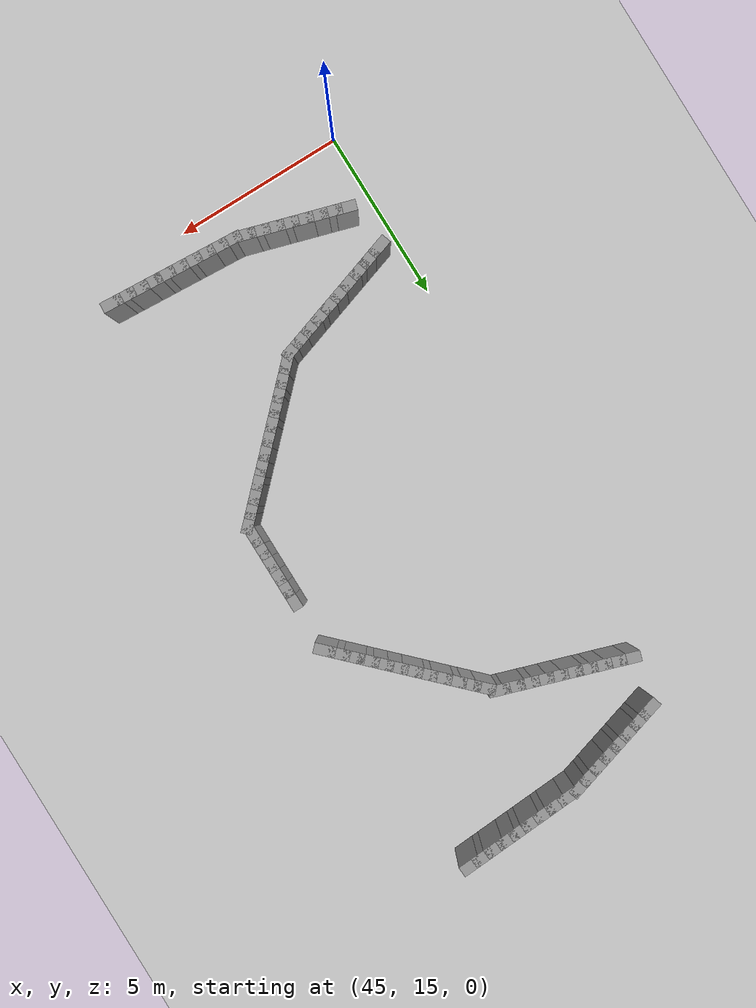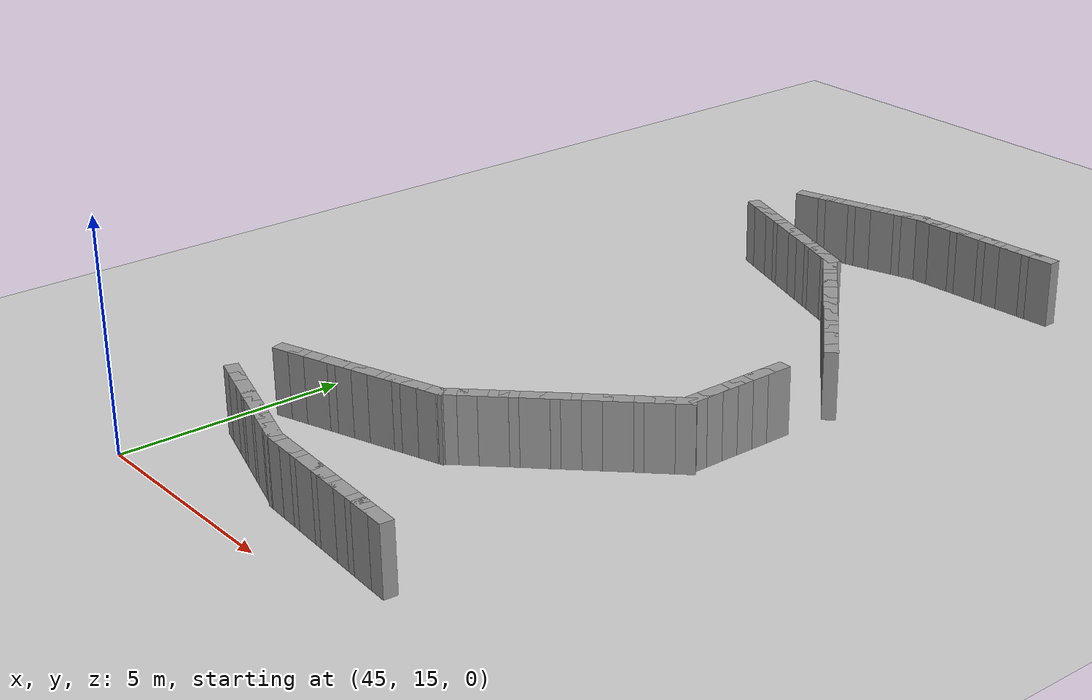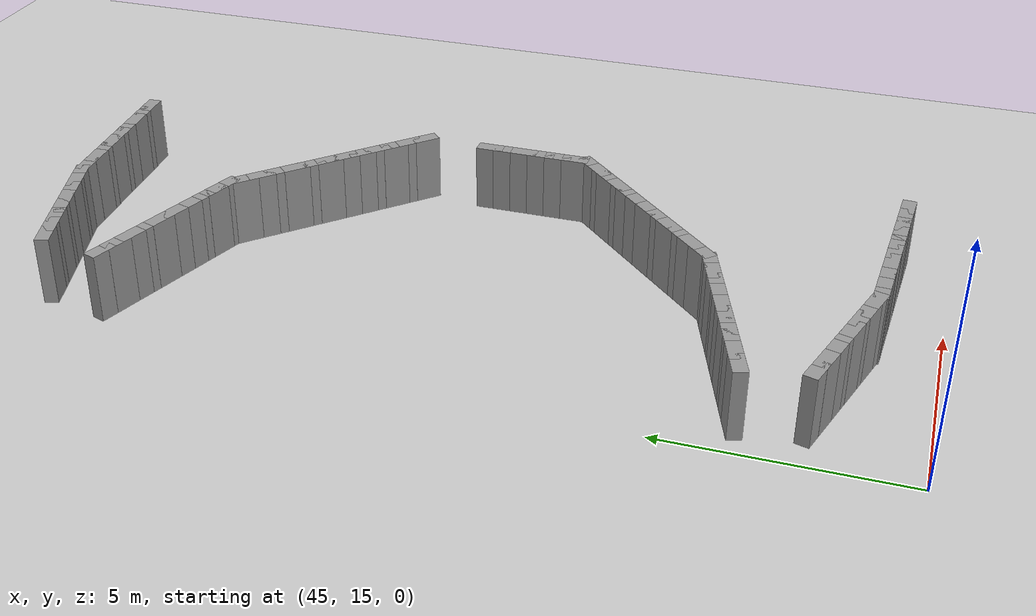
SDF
<sdf version="1.5">
 <world name="test_variable_width">
  <include><uri>model://sun</uri></include>
  <include><uri>model://ground_plane</uri></include>
  <model name="curbL_60">
   <static>true</static>
   <pose>45.689 18.542 0.750 0 0 0.316</pose>
   <link name="link">
    <collision name="col"><geometry><box><size>0.600 0.300 1.500</size></box></geometry></collision>
    <visual name="vis">
     <geometry><box><size>0.600 0.300 1.500</size></box></geometry>
     <material><ambient>0.6 0.6 0.6 1</ambient><diffuse>0.6 0.6 0.6 1</diffuse></material>
    </visual>
   </link>
  </model>
  <model name="curbL_61">
   <static>true</static>
   <pose>46.070 18.666 0.750 0 0 0.316</pose>
   <link name="link">
    <collision name="col"><geometry><box><size>0.600 0.300 1.500</size></box></geometry></collision>
    <visual name="vis">
     <geometry><box><size>0.600 0.300 1.500</size></box></geometry>
     <material><ambient>0.6 0.6 0.6 1</ambient><diffuse>0.6 0.6 0.6 1</diffuse></material>
    </visual>
   </link>
  </model>
  <model name="curbL_62">
   <static>true</static>
   <pose>46.450 18.790 0.750 0 0 0.316</pose>
   <link name="link">
    <collision name="col"><geometry><box><size>0.600 0.300 1.500</size></box></geometry></collision>
    <visual name="vis">
     <geometry><box><size>0.600 0.300 1.500</size></box></geometry>
     <material><ambient>0.6 0.6 0.6 1</ambient><diffuse>0.6 0.6 0.6 1</diffuse></material>
    </visual>
   </link>
  </model>
  <model name="curbL_63">
   <static>true</static>
   <pose>46.830 18.915 0.750 0 0 0.316</pose>
   <link name="link">
    <collision name="col"><geometry><box><size>0.600 0.300 1.500</size></box></geometry></collision>
    <visual name="vis">
     <geometry><box><size>0.600 0.300 1.500</size></box></geometry>
     <material><ambient>0.6 0.6 0.6 1</ambient><diffuse>0.6 0.6 0.6 1</diffuse></material>
    </visual>
   </link>
  </model>
  <model name="curbL_64">
   <static>true</static>
   <pose>47.210 19.039 0.750 0 0 0.316</pose>
   <link name="link">
    <collision name="col"><geometry><box><size>0.600 0.300 1.500</size></box></geometry></collision>
    <visual name="vis">
     <geometry><box><size>0.600 0.300 1.500</size></box></geometry>
     <material><ambient>0.6 0.6 0.6 1</ambient><diffuse>0.6 0.6 0.6 1</diffuse></material>
    </visual>
   </link>
  </model>
  <model name="curbL_65">
   <static>true</static>
   <pose>47.590 19.163 0.750 0 0 0.316</pose>
   <link name="link">
    <collision name="col"><geometry><box><size>0.600 0.300 1.500</size></box></geometry></collision>
    <visual name="vis">
     <geometry><box><size>0.600 0.300 1.500</size></box></geometry>
     <material><ambient>0.6 0.6 0.6 1</ambient><diffuse>0.6 0.6 0.6 1</diffuse></material>
    </visual>
   </link>
  </model>
  <model name="curbL_66">
   <static>true</static>
   <pose>47.971 19.287 0.750 0 0 0.316</pose>
   <link name="link">
    <collision name="col"><geometry><box><size>0.600 0.300 1.500</size></box></geometry></collision>
    <visual name="vis">
     <geometry><box><size>0.600 0.300 1.500</size></box></geometry>
     <material><ambient>0.6 0.6 0.6 1</ambient><diffuse>0.6 0.6 0.6 1</diffuse></material>
    </visual>
   </link>
  </model>
  <model name="curbL_67">
   <static>true</static>
   <pose>48.351 19.412 0.750 0 0 0.316</pose>
   <link name="link">
    <collision name="col"><geometry><box><size>0.600 0.300 1.500</size></box></geometry></collision>
    <visual name="vis">
     <geometry><box><size>0.600 0.300 1.500</size></box></geometry>
     <material><ambient>0.6 0.6 0.6 1</ambient><diffuse>0.6 0.6 0.6 1</diffuse></material>
    </visual>
   </link>
  </model>
  <model name="curbL_68">
   <static>true</static>
   <pose>48.731 19.536 0.750 0 0 0.316</pose>
   <link name="link">
    <collision name="col"><geometry><box><size>0.600 0.300 1.500</size></box></geometry></collision>
    <visual name="vis">
     <geometry><box><size>0.600 0.300 1.500</size></box></geometry>
     <material><ambient>0.6 0.6 0.6 1</ambient><diffuse>0.6 0.6 0.6 1</diffuse></material>
    </visual>
   </link>
  </model>
  <model name="curbL_69">
   <static>true</static>
   <pose>49.111 19.660 0.750 0 0 0.316</pose>
   <link name="link">
    <collision name="col"><geometry><box><size>0.600 0.300 1.500</size></box></geometry></collision>
    <visual name="vis">
     <geometry><box><size>0.600 0.300 1.500</size></box></geometry>
     <material><ambient>0.6 0.6 0.6 1</ambient><diffuse>0.6 0.6 0.6 1</diffuse></material>
    </visual>
   </link>
  </model>
  <model name="curbL_70">
   <static>true</static>
   <pose>49.433 19.879 0.750 0 0 0.784</pose>
   <link name="link">
    <collision name="col"><geometry><box><size>0.600 0.300 1.500</size></box></geometry></collision>
    <visual name="vis">
     <geometry><box><size>0.600 0.300 1.500</size></box></geometry>
     <material><ambient>0.6 0.6 0.6 1</ambient><diffuse>0.6 0.6 0.6 1</diffuse></material>
    </visual>
   </link>
  </model>
  <model name="curbL_71">
   <static>true</static>
   <pose>49.717 20.162 0.750 0 0 0.784</pose>
   <link name="link">
    <collision name="col"><geometry><box><size>0.600 0.300 1.500</size></box></geometry></collision>
    <visual name="vis">
     <geometry><box><size>0.600 0.300 1.500</size></box></geometry>
     <material><ambient>0.6 0.6 0.6 1</ambient><diffuse>0.6 0.6 0.6 1</diffuse></material>
    </visual>
   </link>
  </model>
  <model name="curbL_72">
   <static>true</static>
   <pose>50.000 20.444 0.750 0 0 0.784</pose>
   <link name="link">
    <collision name="col"><geometry><box><size>0.600 0.300 1.500</size></box></geometry></collision>
    <visual name="vis">
     <geometry><box><size>0.600 0.300 1.500</size></box></geometry>
     <material><ambient>0.6 0.6 0.6 1</ambient><diffuse>0.6 0.6 0.6 1</diffuse></material>
    </visual>
   </link>
  </model>
  <model name="curbL_73">
   <static>true</static>
   <pose>50.283 20.727 0.750 0 0 0.784</pose>
   <link name="link">
    <collision name="col"><geometry><box><size>0.600 0.300 1.500</size></box></geometry></collision>
    <visual name="vis">
     <geometry><box><size>0.600 0.300 1.500</size></box></geometry>
     <material><ambient>0.6 0.6 0.6 1</ambient><diffuse>0.6 0.6 0.6 1</diffuse></material>
    </visual>
   </link>
  </model>
  <model name="curbL_74">
   <static>true</static>
   <pose>50.566 21.009 0.750 0 0 0.784</pose>
   <link name="link">
    <collision name="col"><geometry><box><size>0.600 0.300 1.500</size></box></geometry></collision>
    <visual name="vis">
     <geometry><box><size>0.600 0.300 1.500</size></box></geometry>
     <material><ambient>0.6 0.6 0.6 1</ambient><diffuse>0.6 0.6 0.6 1</diffuse></material>
    </visual>
   </link>
  </model>
  <model name="curbL_75">
   <static>true</static>
   <pose>50.849 21.292 0.750 0 0 0.784</pose>
   <link name="link">
    <collision name="col"><geometry><box><size>0.600 0.300 1.500</size></box></geometry></collision>
    <visual name="vis">
     <geometry><box><size>0.600 0.300 1.500</size></box></geometry>
     <material><ambient>0.6 0.6 0.6 1</ambient><diffuse>0.6 0.6 0.6 1</diffuse></material>
    </visual>
   </link>
  </model>
  <model name="curbL_76">
   <static>true</static>
   <pose>51.132 21.574 0.750 0 0 0.784</pose>
   <link name="link">
    <collision name="col"><geometry><box><size>0.600 0.300 1.500</size></box></geometry></collision>
    <visual name="vis">
     <geometry><box><size>0.600 0.300 1.500</size></box></geometry>
     <material><ambient>0.6 0.6 0.6 1</ambient><diffuse>0.6 0.6 0.6 1</diffuse></material>
    </visual>
   </link>
  </model>
  <model name="curbL_77">
   <static>true</static>
   <pose>51.416 21.857 0.750 0 0 0.784</pose>
   <link name="link">
    <collision name="col"><geometry><box><size>0.600 0.300 1.500</size></box></geometry></collision>
    <visual name="vis">
     <geometry><box><size>0.600 0.300 1.500</size></box></geometry>
     <material><ambient>0.6 0.6 0.6 1</ambient><diffuse>0.6 0.6 0.6 1</diffuse></material>
    </visual>
   </link>
  </model>
  <model name="curbL_78">
   <static>true</static>
   <pose>51.699 22.139 0.750 0 0 0.784</pose>
   <link name="link">
    <collision name="col"><geometry><box><size>0.600 0.300 1.500</size></box></geometry></collision>
    <visual name="vis">
     <geometry><box><size>0.600 0.300 1.500</size></box></geometry>
     <material><ambient>0.6 0.6 0.6 1</ambient><diffuse>0.6 0.6 0.6 1</diffuse></material>
    </visual>
   </link>
  </model>
  <model name="curbL_79">
   <static>true</static>
   <pose>51.982 22.422 0.750 0 0 0.784</pose>
   <link name="link">
    <collision name="col"><geometry><box><size>0.600 0.300 1.500</size></box></geometry></collision>
    <visual name="vis">
     <geometry><box><size>0.600 0.300 1.500</size></box></geometry>
     <material><ambient>0.6 0.6 0.6 1</ambient><diffuse>0.6 0.6 0.6 1</diffuse></material>
    </visual>
   </link>
  </model>
  <model name="curbL_80">
   <static>true</static>
   <pose>52.265 22.704 0.750 0 0 0.784</pose>
   <link name="link">
    <collision name="col"><geometry><box><size>0.600 0.300 1.500</size></box></geometry></collision>
    <visual name="vis">
     <geometry><box><size>0.600 0.300 1.500</size></box></geometry>
     <material><ambient>0.6 0.6 0.6 1</ambient><diffuse>0.6 0.6 0.6 1</diffuse></material>
    </visual>
   </link>
  </model>
  <model name="curbL_81">
   <static>true</static>
   <pose>52.548 22.987 0.750 0 0 0.784</pose>
   <link name="link">
    <collision name="col"><geometry><box><size>0.600 0.300 1.500</size></box></geometry></collision>
    <visual name="vis">
     <geometry><box><size>0.600 0.300 1.500</size></box></geometry>
     <material><ambient>0.6 0.6 0.6 1</ambient><diffuse>0.6 0.6 0.6 1</diffuse></material>
    </visual>
   </link>
  </model>
  <model name="curbL_82">
   <static>true</static>
   <pose>52.624 23.355 0.750 0 0 1.571</pose>
   <link name="link">
    <collision name="col"><geometry><box><size>0.600 0.300 1.500</size></box></geometry></collision>
    <visual name="vis">
     <geometry><box><size>0.600 0.300 1.500</size></box></geometry>
     <material><ambient>0.6 0.6 0.6 1</ambient><diffuse>0.6 0.6 0.6 1</diffuse></material>
    </visual>
   </link>
  </model>
  <model name="curbL_83">
   <static>true</static>
   <pose>52.624 23.755 0.750 0 0 1.571</pose>
   <link name="link">
    <collision name="col"><geometry><box><size>0.600 0.300 1.500</size></box></geometry></collision>
    <visual name="vis">
     <geometry><box><size>0.600 0.300 1.500</size></box></geometry>
     <material><ambient>0.6 0.6 0.6 1</ambient><diffuse>0.6 0.6 0.6 1</diffuse></material>
    </visual>
   </link>
  </model>
  <model name="curbL_84">
   <static>true</static>
   <pose>52.624 24.155 0.750 0 0 1.571</pose>
   <link name="link">
    <collision name="col"><geometry><box><size>0.600 0.300 1.500</size></box></geometry></collision>
    <visual name="vis">
     <geometry><box><size>0.600 0.300 1.500</size></box></geometry>
     <material><ambient>0.6 0.6 0.6 1</ambient><diffuse>0.6 0.6 0.6 1</diffuse></material>
    </visual>
   </link>
  </model>
  <model name="curbL_85">
   <static>true</static>
   <pose>52.624 24.555 0.750 0 0 1.571</pose>
   <link name="link">
    <collision name="col"><geometry><box><size>0.600 0.300 1.500</size></box></geometry></collision>
    <visual name="vis">
     <geometry><box><size>0.600 0.300 1.500</size></box></geometry>
     <material><ambient>0.6 0.6 0.6 1</ambient><diffuse>0.6 0.6 0.6 1</diffuse></material>
    </visual>
   </link>
  </model>
  <model name="curbL_86">
   <static>true</static>
   <pose>52.624 24.955 0.750 0 0 1.571</pose>
   <link name="link">
    <collision name="col"><geometry><box><size>0.600 0.300 1.500</size></box></geometry></collision>
    <visual name="vis">
     <geometry><box><size>0.600 0.300 1.500</size></box></geometry>
     <material><ambient>0.6 0.6 0.6 1</ambient><diffuse>0.6 0.6 0.6 1</diffuse></material>
    </visual>
   </link>
  </model>
  <model name="curbL_87">
   <static>true</static>
   <pose>52.624 25.355 0.750 0 0 1.571</pose>
   <link name="link">
    <collision name="col"><geometry><box><size>0.600 0.300 1.500</size></box></geometry></collision>
    <visual name="vis">
     <geometry><box><size>0.600 0.300 1.500</size></box></geometry>
     <material><ambient>0.6 0.6 0.6 1</ambient><diffuse>0.6 0.6 0.6 1</diffuse></material>
    </visual>
   </link>
  </model>
  <model name="curbL_91">
   <static>true</static>
   <pose>52.611 26.950 0.750 0 0 2.357</pose>
   <link name="link">
    <collision name="col"><geometry><box><size>0.600 0.300 1.500</size></box></geometry></collision>
    <visual name="vis">
     <geometry><box><size>0.600 0.300 1.500</size></box></geometry>
     <material><ambient>0.6 0.6 0.6 1</ambient><diffuse>0.6 0.6 0.6 1</diffuse></material>
    </visual>
   </link>
  </model>
  <model name="curbL_92">
   <static>true</static>
   <pose>52.328 27.233 0.750 0 0 2.357</pose>
   <link name="link">
    <collision name="col"><geometry><box><size>0.600 0.300 1.500</size></box></geometry></collision>
    <visual name="vis">
     <geometry><box><size>0.600 0.300 1.500</size></box></geometry>
     <material><ambient>0.6 0.6 0.6 1</ambient><diffuse>0.6 0.6 0.6 1</diffuse></material>
    </visual>
   </link>
  </model>
  <model name="curbL_93">
   <static>true</static>
   <pose>52.045 27.515 0.750 0 0 2.357</pose>
   <link name="link">
    <collision name="col"><geometry><box><size>0.600 0.300 1.500</size></box></geometry></collision>
    <visual name="vis">
     <geometry><box><size>0.600 0.300 1.500</size></box></geometry>
     <material><ambient>0.6 0.6 0.6 1</ambient><diffuse>0.6 0.6 0.6 1</diffuse></material>
    </visual>
   </link>
  </model>
  <model name="curbL_94">
   <static>true</static>
   <pose>51.762 27.798 0.750 0 0 2.357</pose>
   <link name="link">
    <collision name="col"><geometry><box><size>0.600 0.300 1.500</size></box></geometry></collision>
    <visual name="vis">
     <geometry><box><size>0.600 0.300 1.500</size></box></geometry>
     <material><ambient>0.6 0.6 0.6 1</ambient><diffuse>0.6 0.6 0.6 1</diffuse></material>
    </visual>
   </link>
  </model>
  <model name="curbL_95">
   <static>true</static>
   <pose>51.479 28.080 0.750 0 0 2.357</pose>
   <link name="link">
    <collision name="col"><geometry><box><size>0.600 0.300 1.500</size></box></geometry></collision>
    <visual name="vis">
     <geometry><box><size>0.600 0.300 1.500</size></box></geometry>
     <material><ambient>0.6 0.6 0.6 1</ambient><diffuse>0.6 0.6 0.6 1</diffuse></material>
    </visual>
   </link>
  </model>
  <model name="curbL_96">
   <static>true</static>
   <pose>51.195 28.363 0.750 0 0 2.357</pose>
   <link name="link">
    <collision name="col"><geometry><box><size>0.600 0.300 1.500</size></box></geometry></collision>
    <visual name="vis">
     <geometry><box><size>0.600 0.300 1.500</size></box></geometry>
     <material><ambient>0.6 0.6 0.6 1</ambient><diffuse>0.6 0.6 0.6 1</diffuse></material>
    </visual>
   </link>
  </model>
  <model name="curbL_97">
   <static>true</static>
   <pose>50.912 28.645 0.750 0 0 2.357</pose>
   <link name="link">
    <collision name="col"><geometry><box><size>0.600 0.300 1.500</size></box></geometry></collision>
    <visual name="vis">
     <geometry><box><size>0.600 0.300 1.500</size></box></geometry>
     <material><ambient>0.6 0.6 0.6 1</ambient><diffuse>0.6 0.6 0.6 1</diffuse></material>
    </visual>
   </link>
  </model>
  <model name="curbL_98">
   <static>true</static>
   <pose>50.629 28.928 0.750 0 0 2.357</pose>
   <link name="link">
    <collision name="col"><geometry><box><size>0.600 0.300 1.500</size></box></geometry></collision>
    <visual name="vis">
     <geometry><box><size>0.600 0.300 1.500</size></box></geometry>
     <material><ambient>0.6 0.6 0.6 1</ambient><diffuse>0.6 0.6 0.6 1</diffuse></material>
    </visual>
   </link>
  </model>
  <model name="curbL_99">
   <static>true</static>
   <pose>50.346 29.210 0.750 0 0 2.357</pose>
   <link name="link">
    <collision name="col"><geometry><box><size>0.600 0.300 1.500</size></box></geometry></collision>
    <visual name="vis">
     <geometry><box><size>0.600 0.300 1.500</size></box></geometry>
     <material><ambient>0.6 0.6 0.6 1</ambient><diffuse>0.6 0.6 0.6 1</diffuse></material>
    </visual>
   </link>
  </model>
  <model name="curbL_100">
   <static>true</static>
   <pose>50.063 29.493 0.750 0 0 2.357</pose>
   <link name="link">
    <collision name="col"><geometry><box><size>0.600 0.300 1.500</size></box></geometry></collision>
    <visual name="vis">
     <geometry><box><size>0.600 0.300 1.500</size></box></geometry>
     <material><ambient>0.6 0.6 0.6 1</ambient><diffuse>0.6 0.6 0.6 1</diffuse></material>
    </visual>
   </link>
  </model>
  <model name="curbL_101">
   <static>true</static>
   <pose>49.780 29.775 0.750 0 0 2.357</pose>
   <link name="link">
    <collision name="col"><geometry><box><size>0.600 0.300 1.500</size></box></geometry></collision>
    <visual name="vis">
     <geometry><box><size>0.600 0.300 1.500</size></box></geometry>
     <material><ambient>0.6 0.6 0.6 1</ambient><diffuse>0.6 0.6 0.6 1</diffuse></material>
    </visual>
   </link>
  </model>
  <model name="curbL_102">
   <static>true</static>
   <pose>49.496 30.058 0.750 0 0 2.357</pose>
   <link name="link">
    <collision name="col"><geometry><box><size>0.600 0.300 1.500</size></box></geometry></collision>
    <visual name="vis">
     <geometry><box><size>0.600 0.300 1.500</size></box></geometry>
     <material><ambient>0.6 0.6 0.6 1</ambient><diffuse>0.6 0.6 0.6 1</diffuse></material>
    </visual>
   </link>
  </model>
  <model name="curbL_103">
   <static>true</static>
   <pose>49.196 30.312 0.750 0 0 2.826</pose>
   <link name="link">
    <collision name="col"><geometry><box><size>0.600 0.300 1.500</size></box></geometry></collision>
    <visual name="vis">
     <geometry><box><size>0.600 0.300 1.500</size></box></geometry>
     <material><ambient>0.6 0.6 0.6 1</ambient><diffuse>0.6 0.6 0.6 1</diffuse></material>
    </visual>
   </link>
  </model>
  <model name="curbL_104">
   <static>true</static>
   <pose>48.816 30.436 0.750 0 0 2.826</pose>
   <link name="link">
    <collision name="col"><geometry><box><size>0.600 0.300 1.500</size></box></geometry></collision>
    <visual name="vis">
     <geometry><box><size>0.600 0.300 1.500</size></box></geometry>
     <material><ambient>0.6 0.6 0.6 1</ambient><diffuse>0.6 0.6 0.6 1</diffuse></material>
    </visual>
   </link>
  </model>
  <model name="curbL_105">
   <static>true</static>
   <pose>48.436 30.561 0.750 0 0 2.826</pose>
   <link name="link">
    <collision name="col"><geometry><box><size>0.600 0.300 1.500</size></box></geometry></collision>
    <visual name="vis">
     <geometry><box><size>0.600 0.300 1.500</size></box></geometry>
     <material><ambient>0.6 0.6 0.6 1</ambient><diffuse>0.6 0.6 0.6 1</diffuse></material>
    </visual>
   </link>
  </model>
  <model name="curbL_106">
   <static>true</static>
   <pose>48.055 30.685 0.750 0 0 2.826</pose>
   <link name="link">
    <collision name="col"><geometry><box><size>0.600 0.300 1.500</size></box></geometry></collision>
    <visual name="vis">
     <geometry><box><size>0.600 0.300 1.500</size></box></geometry>
     <material><ambient>0.6 0.6 0.6 1</ambient><diffuse>0.6 0.6 0.6 1</diffuse></material>
    </visual>
   </link>
  </model>
  <model name="curbL_107">
   <static>true</static>
   <pose>47.675 30.809 0.750 0 0 2.826</pose>
   <link name="link">
    <collision name="col"><geometry><box><size>0.600 0.300 1.500</size></box></geometry></collision>
    <visual name="vis">
     <geometry><box><size>0.600 0.300 1.500</size></box></geometry>
     <material><ambient>0.6 0.6 0.6 1</ambient><diffuse>0.6 0.6 0.6 1</diffuse></material>
    </visual>
   </link>
  </model>
  <model name="curbL_108">
   <static>true</static>
   <pose>47.295 30.933 0.750 0 0 2.826</pose>
   <link name="link">
    <collision name="col"><geometry><box><size>0.600 0.300 1.500</size></box></geometry></collision>
    <visual name="vis">
     <geometry><box><size>0.600 0.300 1.500</size></box></geometry>
     <material><ambient>0.6 0.6 0.6 1</ambient><diffuse>0.6 0.6 0.6 1</diffuse></material>
    </visual>
   </link>
  </model>
  <model name="curbL_109">
   <static>true</static>
   <pose>46.915 31.058 0.750 0 0 2.826</pose>
   <link name="link">
    <collision name="col"><geometry><box><size>0.600 0.300 1.500</size></box></geometry></collision>
    <visual name="vis">
     <geometry><box><size>0.600 0.300 1.500</size></box></geometry>
     <material><ambient>0.6 0.6 0.6 1</ambient><diffuse>0.6 0.6 0.6 1</diffuse></material>
    </visual>
   </link>
  </model>
  <model name="curbL_110">
   <static>true</static>
   <pose>46.535 31.182 0.750 0 0 2.826</pose>
   <link name="link">
    <collision name="col"><geometry><box><size>0.600 0.300 1.500</size></box></geometry></collision>
    <visual name="vis">
     <geometry><box><size>0.600 0.300 1.500</size></box></geometry>
     <material><ambient>0.6 0.6 0.6 1</ambient><diffuse>0.6 0.6 0.6 1</diffuse></material>
    </visual>
   </link>
  </model>
  <model name="curbL_111">
   <static>true</static>
   <pose>46.154 31.306 0.750 0 0 2.826</pose>
   <link name="link">
    <collision name="col"><geometry><box><size>0.600 0.300 1.500</size></box></geometry></collision>
    <visual name="vis">
     <geometry><box><size>0.600 0.300 1.500</size></box></geometry>
     <material><ambient>0.6 0.6 0.6 1</ambient><diffuse>0.6 0.6 0.6 1</diffuse></material>
    </visual>
   </link>
  </model>
  <model name="curbL_112">
   <static>true</static>
   <pose>45.774 31.431 0.750 0 0 2.826</pose>
   <link name="link">
    <collision name="col"><geometry><box><size>0.600 0.300 1.500</size></box></geometry></collision>
    <visual name="vis">
     <geometry><box><size>0.600 0.300 1.500</size></box></geometry>
     <material><ambient>0.6 0.6 0.6 1</ambient><diffuse>0.6 0.6 0.6 1</diffuse></material>
    </visual>
   </link>
  </model>
  <model name="curbR_26">
   <static>true</static>
   <pose>46.041 32.863 0.750 0 0 0.290</pose>
   <link name="link">
    <collision name="col"><geometry><box><size>0.600 0.300 1.500</size></box></geometry></collision>
    <visual name="vis">
     <geometry><box><size>0.600 0.300 1.500</size></box></geometry>
     <material><ambient>0.6 0.6 0.6 1</ambient><diffuse>0.6 0.6 0.6 1</diffuse></material>
    </visual>
   </link>
  </model>
  <model name="curbR_27">
   <static>true</static>
   <pose>46.424 32.978 0.750 0 0 0.290</pose>
   <link name="link">
    <collision name="col"><geometry><box><size>0.600 0.300 1.500</size></box></geometry></collision>
    <visual name="vis">
     <geometry><box><size>0.600 0.300 1.500</size></box></geometry>
     <material><ambient>0.6 0.6 0.6 1</ambient><diffuse>0.6 0.6 0.6 1</diffuse></material>
    </visual>
   </link>
  </model>
  <model name="curbR_28">
   <static>true</static>
   <pose>46.808 33.092 0.750 0 0 0.290</pose>
   <link name="link">
    <collision name="col"><geometry><box><size>0.600 0.300 1.500</size></box></geometry></collision>
    <visual name="vis">
     <geometry><box><size>0.600 0.300 1.500</size></box></geometry>
     <material><ambient>0.6 0.6 0.6 1</ambient><diffuse>0.6 0.6 0.6 1</diffuse></material>
    </visual>
   </link>
  </model>
  <model name="curbR_29">
   <static>true</static>
   <pose>47.191 33.207 0.750 0 0 0.290</pose>
   <link name="link">
    <collision name="col"><geometry><box><size>0.600 0.300 1.500</size></box></geometry></collision>
    <visual name="vis">
     <geometry><box><size>0.600 0.300 1.500</size></box></geometry>
     <material><ambient>0.6 0.6 0.6 1</ambient><diffuse>0.6 0.6 0.6 1</diffuse></material>
    </visual>
   </link>
  </model>
  <model name="curbR_30">
   <static>true</static>
   <pose>47.574 33.321 0.750 0 0 0.290</pose>
   <link name="link">
    <collision name="col"><geometry><box><size>0.600 0.300 1.500</size></box></geometry></collision>
    <visual name="vis">
     <geometry><box><size>0.600 0.300 1.500</size></box></geometry>
     <material><ambient>0.6 0.6 0.6 1</ambient><diffuse>0.6 0.6 0.6 1</diffuse></material>
    </visual>
   </link>
  </model>
  <model name="curbR_31">
   <static>true</static>
   <pose>47.958 33.435 0.750 0 0 0.290</pose>
   <link name="link">
    <collision name="col"><geometry><box><size>0.600 0.300 1.500</size></box></geometry></collision>
    <visual name="vis">
     <geometry><box><size>0.600 0.300 1.500</size></box></geometry>
     <material><ambient>0.6 0.6 0.6 1</ambient><diffuse>0.6 0.6 0.6 1</diffuse></material>
    </visual>
   </link>
  </model>
  <model name="curbR_32">
   <static>true</static>
   <pose>48.341 33.550 0.750 0 0 0.290</pose>
   <link name="link">
    <collision name="col"><geometry><box><size>0.600 0.300 1.500</size></box></geometry></collision>
    <visual name="vis">
     <geometry><box><size>0.600 0.300 1.500</size></box></geometry>
     <material><ambient>0.6 0.6 0.6 1</ambient><diffuse>0.6 0.6 0.6 1</diffuse></material>
    </visual>
   </link>
  </model>
  <model name="curbR_33">
   <static>true</static>
   <pose>48.724 33.664 0.750 0 0 0.290</pose>
   <link name="link">
    <collision name="col"><geometry><box><size>0.600 0.300 1.500</size></box></geometry></collision>
    <visual name="vis">
     <geometry><box><size>0.600 0.300 1.500</size></box></geometry>
     <material><ambient>0.6 0.6 0.6 1</ambient><diffuse>0.6 0.6 0.6 1</diffuse></material>
    </visual>
   </link>
  </model>
  <model name="curbR_34">
   <static>true</static>
   <pose>49.119 33.712 0.750 0 0 0.063</pose>
   <link name="link">
    <collision name="col"><geometry><box><size>0.600 0.300 1.500</size></box></geometry></collision>
    <visual name="vis">
     <geometry><box><size>0.600 0.300 1.500</size></box></geometry>
     <material><ambient>0.6 0.6 0.6 1</ambient><diffuse>0.6 0.6 0.6 1</diffuse></material>
    </visual>
   </link>
  </model>
  <model name="curbR_35">
   <static>true</static>
   <pose>49.519 33.737 0.750 0 0 0.063</pose>
   <link name="link">
    <collision name="col"><geometry><box><size>0.600 0.300 1.500</size></box></geometry></collision>
    <visual name="vis">
     <geometry><box><size>0.600 0.300 1.500</size></box></geometry>
     <material><ambient>0.6 0.6 0.6 1</ambient><diffuse>0.6 0.6 0.6 1</diffuse></material>
    </visual>
   </link>
  </model>
  <model name="curbR_36">
   <static>true</static>
   <pose>49.918 33.763 0.750 0 0 0.063</pose>
   <link name="link">
    <collision name="col"><geometry><box><size>0.600 0.300 1.500</size></box></geometry></collision>
    <visual name="vis">
     <geometry><box><size>0.600 0.300 1.500</size></box></geometry>
     <material><ambient>0.6 0.6 0.6 1</ambient><diffuse>0.6 0.6 0.6 1</diffuse></material>
    </visual>
   </link>
  </model>
  <model name="curbR_37">
   <static>true</static>
   <pose>50.317 33.788 0.750 0 0 0.063</pose>
   <link name="link">
    <collision name="col"><geometry><box><size>0.600 0.300 1.500</size></box></geometry></collision>
    <visual name="vis">
     <geometry><box><size>0.600 0.300 1.500</size></box></geometry>
     <material><ambient>0.6 0.6 0.6 1</ambient><diffuse>0.6 0.6 0.6 1</diffuse></material>
    </visual>
   </link>
  </model>
  <model name="curbR_38">
   <static>true</static>
   <pose>50.716 33.814 0.750 0 0 0.063</pose>
   <link name="link">
    <collision name="col"><geometry><box><size>0.600 0.300 1.500</size></box></geometry></collision>
    <visual name="vis">
     <geometry><box><size>0.600 0.300 1.500</size></box></geometry>
     <material><ambient>0.6 0.6 0.6 1</ambient><diffuse>0.6 0.6 0.6 1</diffuse></material>
    </visual>
   </link>
  </model>
  <model name="curbR_39">
   <static>true</static>
   <pose>51.115 33.839 0.750 0 0 0.063</pose>
   <link name="link">
    <collision name="col"><geometry><box><size>0.600 0.300 1.500</size></box></geometry></collision>
    <visual name="vis">
     <geometry><box><size>0.600 0.300 1.500</size></box></geometry>
     <material><ambient>0.6 0.6 0.6 1</ambient><diffuse>0.6 0.6 0.6 1</diffuse></material>
    </visual>
   </link>
  </model>
  <model name="curbR_40">
   <static>true</static>
   <pose>51.515 33.864 0.750 0 0 0.063</pose>
   <link name="link">
    <collision name="col"><geometry><box><size>0.600 0.300 1.500</size></box></geometry></collision>
    <visual name="vis">
     <geometry><box><size>0.600 0.300 1.500</size></box></geometry>
     <material><ambient>0.6 0.6 0.6 1</ambient><diffuse>0.6 0.6 0.6 1</diffuse></material>
    </visual>
   </link>
  </model>
  <model name="curbR_41">
   <static>true</static>
   <pose>51.914 33.890 0.750 0 0 0.063</pose>
   <link name="link">
    <collision name="col"><geometry><box><size>0.600 0.300 1.500</size></box></geometry></collision>
    <visual name="vis">
     <geometry><box><size>0.600 0.300 1.500</size></box></geometry>
     <material><ambient>0.6 0.6 0.6 1</ambient><diffuse>0.6 0.6 0.6 1</diffuse></material>
    </visual>
   </link>
  </model>
  <model name="curbR_42">
   <static>true</static>
   <pose>52.313 33.915 0.750 0 0 0.063</pose>
   <link name="link">
    <collision name="col"><geometry><box><size>0.600 0.300 1.500</size></box></geometry></collision>
    <visual name="vis">
     <geometry><box><size>0.600 0.300 1.500</size></box></geometry>
     <material><ambient>0.6 0.6 0.6 1</ambient><diffuse>0.6 0.6 0.6 1</diffuse></material>
    </visual>
   </link>
  </model>
  <model name="curbR_125">
   <static>true</static>
   <pose>52.565 16.069 0.750 0 0 3.078</pose>
   <link name="link">
    <collision name="col"><geometry><box><size>0.600 0.300 1.500</size></box></geometry></collision>
    <visual name="vis">
     <geometry><box><size>0.600 0.300 1.500</size></box></geometry>
     <material><ambient>0.6 0.6 0.6 1</ambient><diffuse>0.6 0.6 0.6 1</diffuse></material>
    </visual>
   </link>
  </model>
  <model name="curbR_126">
   <static>true</static>
   <pose>52.166 16.094 0.750 0 0 3.078</pose>
   <link name="link">
    <collision name="col"><geometry><box><size>0.600 0.300 1.500</size></box></geometry></collision>
    <visual name="vis">
     <geometry><box><size>0.600 0.300 1.500</size></box></geometry>
     <material><ambient>0.6 0.6 0.6 1</ambient><diffuse>0.6 0.6 0.6 1</diffuse></material>
    </visual>
   </link>
  </model>
  <model name="curbR_127">
   <static>true</static>
   <pose>51.766 16.120 0.750 0 0 3.078</pose>
   <link name="link">
    <collision name="col"><geometry><box><size>0.600 0.300 1.500</size></box></geometry></collision>
    <visual name="vis">
     <geometry><box><size>0.600 0.300 1.500</size></box></geometry>
     <material><ambient>0.6 0.6 0.6 1</ambient><diffuse>0.6 0.6 0.6 1</diffuse></material>
    </visual>
   </link>
  </model>
  <model name="curbR_128">
   <static>true</static>
   <pose>51.367 16.145 0.750 0 0 3.078</pose>
   <link name="link">
    <collision name="col"><geometry><box><size>0.600 0.300 1.500</size></box></geometry></collision>
    <visual name="vis">
     <geometry><box><size>0.600 0.300 1.500</size></box></geometry>
     <material><ambient>0.6 0.6 0.6 1</ambient><diffuse>0.6 0.6 0.6 1</diffuse></material>
    </visual>
   </link>
  </model>
  <model name="curbR_129">
   <static>true</static>
   <pose>50.968 16.170 0.750 0 0 3.078</pose>
   <link name="link">
    <collision name="col"><geometry><box><size>0.600 0.300 1.500</size></box></geometry></collision>
    <visual name="vis">
     <geometry><box><size>0.600 0.300 1.500</size></box></geometry>
     <material><ambient>0.6 0.6 0.6 1</ambient><diffuse>0.6 0.6 0.6 1</diffuse></material>
    </visual>
   </link>
  </model>
  <model name="curbR_130">
   <static>true</static>
   <pose>50.569 16.196 0.750 0 0 3.078</pose>
   <link name="link">
    <collision name="col"><geometry><box><size>0.600 0.300 1.500</size></box></geometry></collision>
    <visual name="vis">
     <geometry><box><size>0.600 0.300 1.500</size></box></geometry>
     <material><ambient>0.6 0.6 0.6 1</ambient><diffuse>0.6 0.6 0.6 1</diffuse></material>
    </visual>
   </link>
  </model>
  <model name="curbR_131">
   <static>true</static>
   <pose>50.170 16.221 0.750 0 0 3.078</pose>
   <link name="link">
    <collision name="col"><geometry><box><size>0.600 0.300 1.500</size></box></geometry></collision>
    <visual name="vis">
     <geometry><box><size>0.600 0.300 1.500</size></box></geometry>
     <material><ambient>0.6 0.6 0.6 1</ambient><diffuse>0.6 0.6 0.6 1</diffuse></material>
    </visual>
   </link>
  </model>
  <model name="curbR_132">
   <static>true</static>
   <pose>49.770 16.247 0.750 0 0 3.078</pose>
   <link name="link">
    <collision name="col"><geometry><box><size>0.600 0.300 1.500</size></box></geometry></collision>
    <visual name="vis">
     <geometry><box><size>0.600 0.300 1.500</size></box></geometry>
     <material><ambient>0.6 0.6 0.6 1</ambient><diffuse>0.6 0.6 0.6 1</diffuse></material>
    </visual>
   </link>
  </model>
  <model name="curbR_133">
   <static>true</static>
   <pose>49.371 16.272 0.750 0 0 3.078</pose>
   <link name="link">
    <collision name="col"><geometry><box><size>0.600 0.300 1.500</size></box></geometry></collision>
    <visual name="vis">
     <geometry><box><size>0.600 0.300 1.500</size></box></geometry>
     <material><ambient>0.6 0.6 0.6 1</ambient><diffuse>0.6 0.6 0.6 1</diffuse></material>
    </visual>
   </link>
  </model>
  <model name="curbR_134">
   <static>true</static>
   <pose>48.972 16.297 0.750 0 0 3.078</pose>
   <link name="link">
    <collision name="col"><geometry><box><size>0.600 0.300 1.500</size></box></geometry></collision>
    <visual name="vis">
     <geometry><box><size>0.600 0.300 1.500</size></box></geometry>
     <material><ambient>0.6 0.6 0.6 1</ambient><diffuse>0.6 0.6 0.6 1</diffuse></material>
    </visual>
   </link>
  </model>
  <model name="curbR_135">
   <static>true</static>
   <pose>48.583 16.378 0.750 0 0 2.852</pose>
   <link name="link">
    <collision name="col"><geometry><box><size>0.600 0.300 1.500</size></box></geometry></collision>
    <visual name="vis">
     <geometry><box><size>0.600 0.300 1.500</size></box></geometry>
     <material><ambient>0.6 0.6 0.6 1</ambient><diffuse>0.6 0.6 0.6 1</diffuse></material>
    </visual>
   </link>
  </model>
  <model name="curbR_136">
   <static>true</static>
   <pose>48.199 16.492 0.750 0 0 2.852</pose>
   <link name="link">
    <collision name="col"><geometry><box><size>0.600 0.300 1.500</size></box></geometry></collision>
    <visual name="vis">
     <geometry><box><size>0.600 0.300 1.500</size></box></geometry>
     <material><ambient>0.6 0.6 0.6 1</ambient><diffuse>0.6 0.6 0.6 1</diffuse></material>
    </visual>
   </link>
  </model>
  <model name="curbR_137">
   <static>true</static>
   <pose>47.816 16.607 0.750 0 0 2.852</pose>
   <link name="link">
    <collision name="col"><geometry><box><size>0.600 0.300 1.500</size></box></geometry></collision>
    <visual name="vis">
     <geometry><box><size>0.600 0.300 1.500</size></box></geometry>
     <material><ambient>0.6 0.6 0.6 1</ambient><diffuse>0.6 0.6 0.6 1</diffuse></material>
    </visual>
   </link>
  </model>
  <model name="curbR_138">
   <static>true</static>
   <pose>47.433 16.721 0.750 0 0 2.852</pose>
   <link name="link">
    <collision name="col"><geometry><box><size>0.600 0.300 1.500</size></box></geometry></collision>
    <visual name="vis">
     <geometry><box><size>0.600 0.300 1.500</size></box></geometry>
     <material><ambient>0.6 0.6 0.6 1</ambient><diffuse>0.6 0.6 0.6 1</diffuse></material>
    </visual>
   </link>
  </model>
  <model name="curbR_139">
   <static>true</static>
   <pose>47.050 16.836 0.750 0 0 2.852</pose>
   <link name="link">
    <collision name="col"><geometry><box><size>0.600 0.300 1.500</size></box></geometry></collision>
    <visual name="vis">
     <geometry><box><size>0.600 0.300 1.500</size></box></geometry>
     <material><ambient>0.6 0.6 0.6 1</ambient><diffuse>0.6 0.6 0.6 1</diffuse></material>
    </visual>
   </link>
  </model>
  <model name="curbR_140">
   <static>true</static>
   <pose>46.666 16.950 0.750 0 0 2.852</pose>
   <link name="link">
    <collision name="col"><geometry><box><size>0.600 0.300 1.500</size></box></geometry></collision>
    <visual name="vis">
     <geometry><box><size>0.600 0.300 1.500</size></box></geometry>
     <material><ambient>0.6 0.6 0.6 1</ambient><diffuse>0.6 0.6 0.6 1</diffuse></material>
    </visual>
   </link>
  </model>
  <model name="curbR_141">
   <static>true</static>
   <pose>46.283 17.064 0.750 0 0 2.852</pose>
   <link name="link">
    <collision name="col"><geometry><box><size>0.600 0.300 1.500</size></box></geometry></collision>
    <visual name="vis">
     <geometry><box><size>0.600 0.300 1.500</size></box></geometry>
     <material><ambient>0.6 0.6 0.6 1</ambient><diffuse>0.6 0.6 0.6 1</diffuse></material>
    </visual>
   </link>
  </model>
  <model name="curbR_142">
   <static>true</static>
   <pose>45.900 17.179 0.750 0 0 2.852</pose>
   <link name="link">
    <collision name="col"><geometry><box><size>0.600 0.300 1.500</size></box></geometry></collision>
    <visual name="vis">
     <geometry><box><size>0.600 0.300 1.500</size></box></geometry>
     <material><ambient>0.6 0.6 0.6 1</ambient><diffuse>0.6 0.6 0.6 1</diffuse></material>
    </visual>
   </link>
  </model>
 </world>
</sdf>
